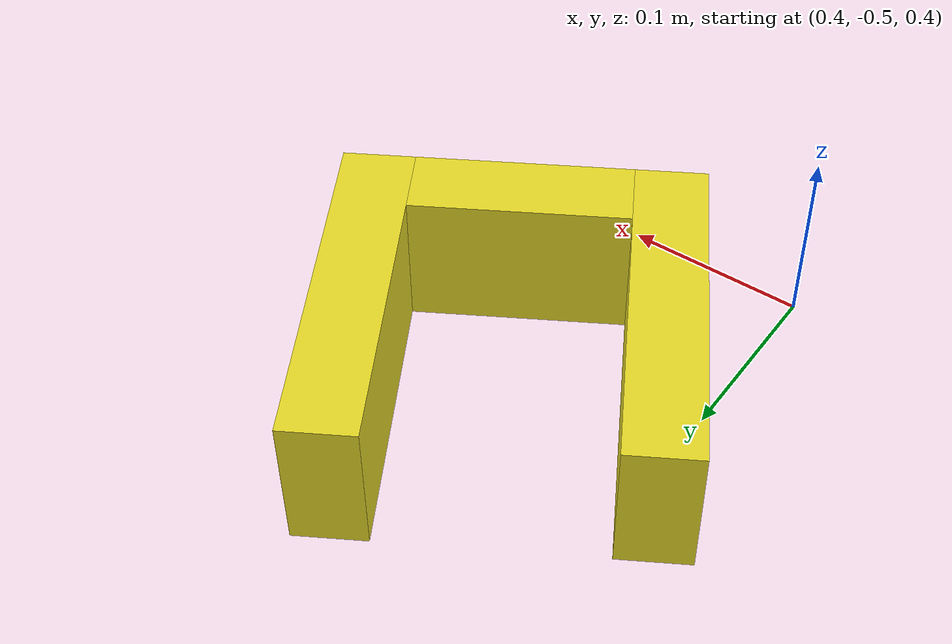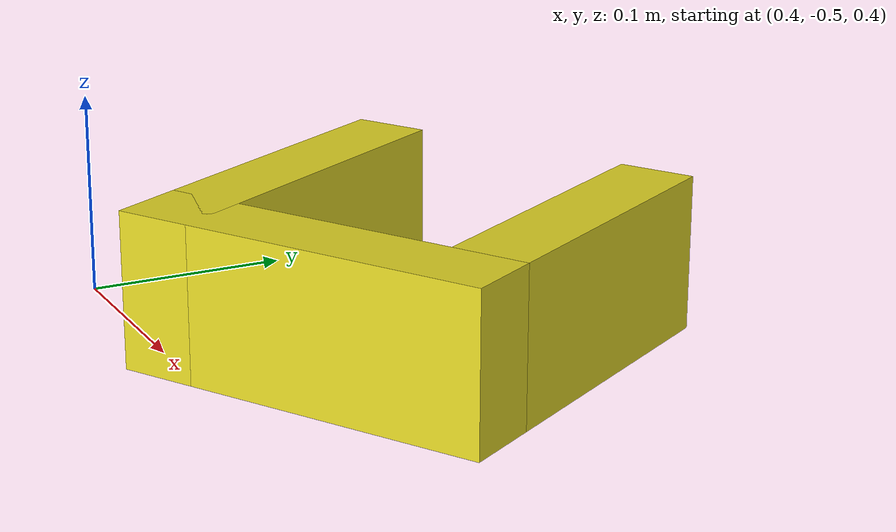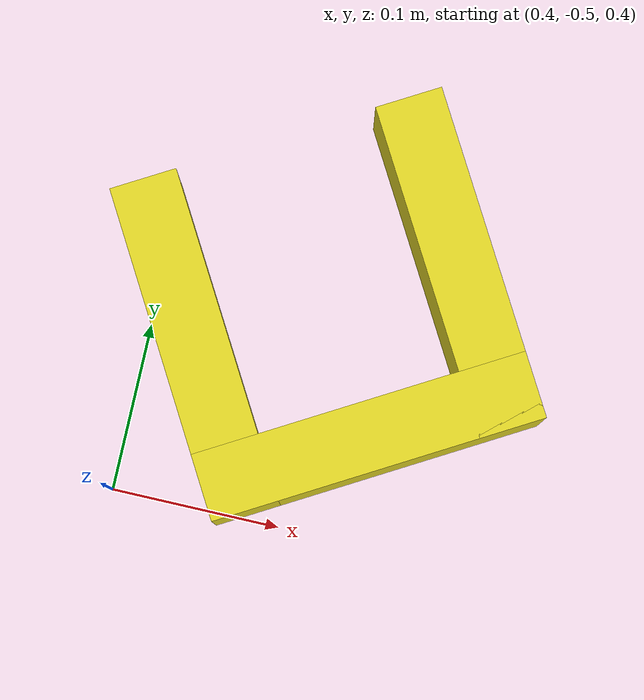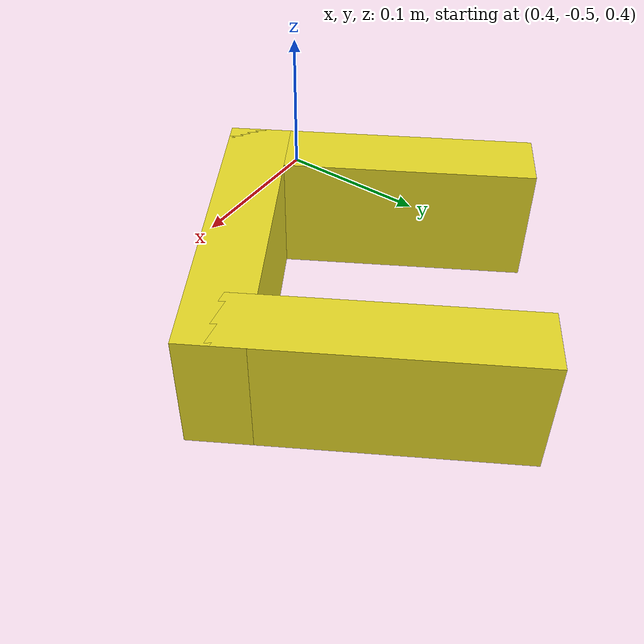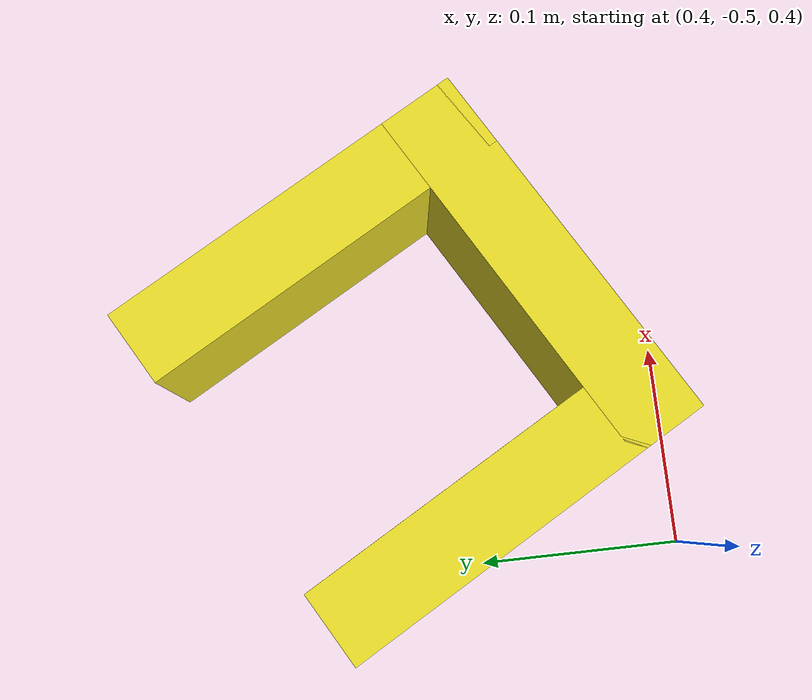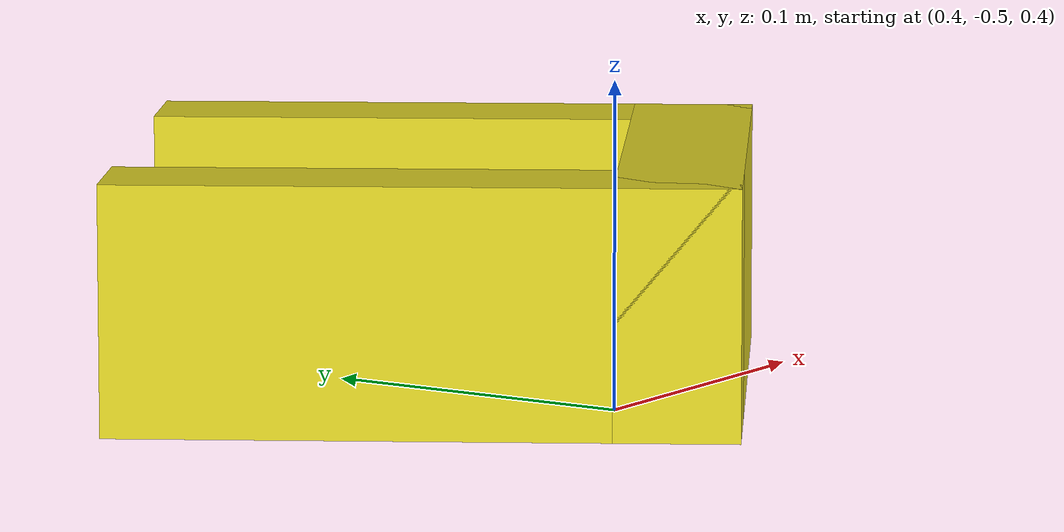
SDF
<?xml version='1.0'?>
<sdf version='1.6'>
  <model name='yellow_frame'>
    <pose>0.5 -0.37 0.40 0 0 -1.0472</pose> <!-- -pi/3 -->

    <!-- Wall 0 -->
    <link name='Wall_0'>
      <collision name='Wall_0_Collision'>
        <geometry>
          <box>
            <size>0.2 0.04 0.08</size>
          </box>
        </geometry>
        <pose>0 0 0.02 0 0 0</pose>
      </collision>

      <visual name='Wall_0_Visual'>
        <pose>0 0 0.02 0 0 0</pose>
        <geometry>
          <box>
            <size>0.2 0.04 0.08</size>
          </box>
        </geometry>
        <material>
          <script>
            <uri>file://media/materials/scripts/gazebo.material</uri>
            <name>Gazebo/YellowGlow</name>
          </script>
          <ambient>1 1 0 1</ambient>
        </material>
      </visual>

      <pose>0 -0.08 0 0 0 0</pose>
    </link>

    <!-- Wall 1 -->
    <link name='Wall_1'>
      <collision name='Wall_1_Collision'>
        <geometry>
          <box>
            <size>0.2 0.04 0.08</size>
          </box>
        </geometry>
        <pose>0 0 0.02 0 0 0</pose>
      </collision>

      <visual name='Wall_1_Visual'>
        <pose>0 0 0.02 0 0 0</pose>
        <geometry>
          <box>
            <size>0.2 0.04 0.08</size>
          </box>
        </geometry>
        <material>
          <script>
            <uri>file://media/materials/scripts/gazebo.material</uri>
            <name>Gazebo/YellowGlow</name>
          </script>
          <ambient>1 1 0 1</ambient>
        </material>
      </visual>

      <pose>0.08 0 0 0 0 -1.5708</pose>
    </link>

    <!-- Wall 2 -->
    <link name='Wall_2'>
      <collision name='Wall_2_Collision'>
        <geometry>
          <box>
            <size>0.2 0.04 0.08</size>
          </box>
        </geometry>
        <pose>0 0 0.02 0 0 0</pose>
      </collision>

      <visual name='Wall_2_Visual'>
        <pose>0 0 0.02 0 0 0</pose>
        <geometry>
          <box>
            <size>0.2 0.04 0.08</size>
          </box>
        </geometry>
        <material>
          <script>
            <uri>file://media/materials/scripts/gazebo.material</uri>
            <name>Gazebo/YellowGlow</name>
          </script>
          <ambient>1 1 0 1</ambient>
        </material>
      </visual>

      <pose>0 0.08 0 0 0 3.14159</pose>
    </link>

  </model>
</sdf>
